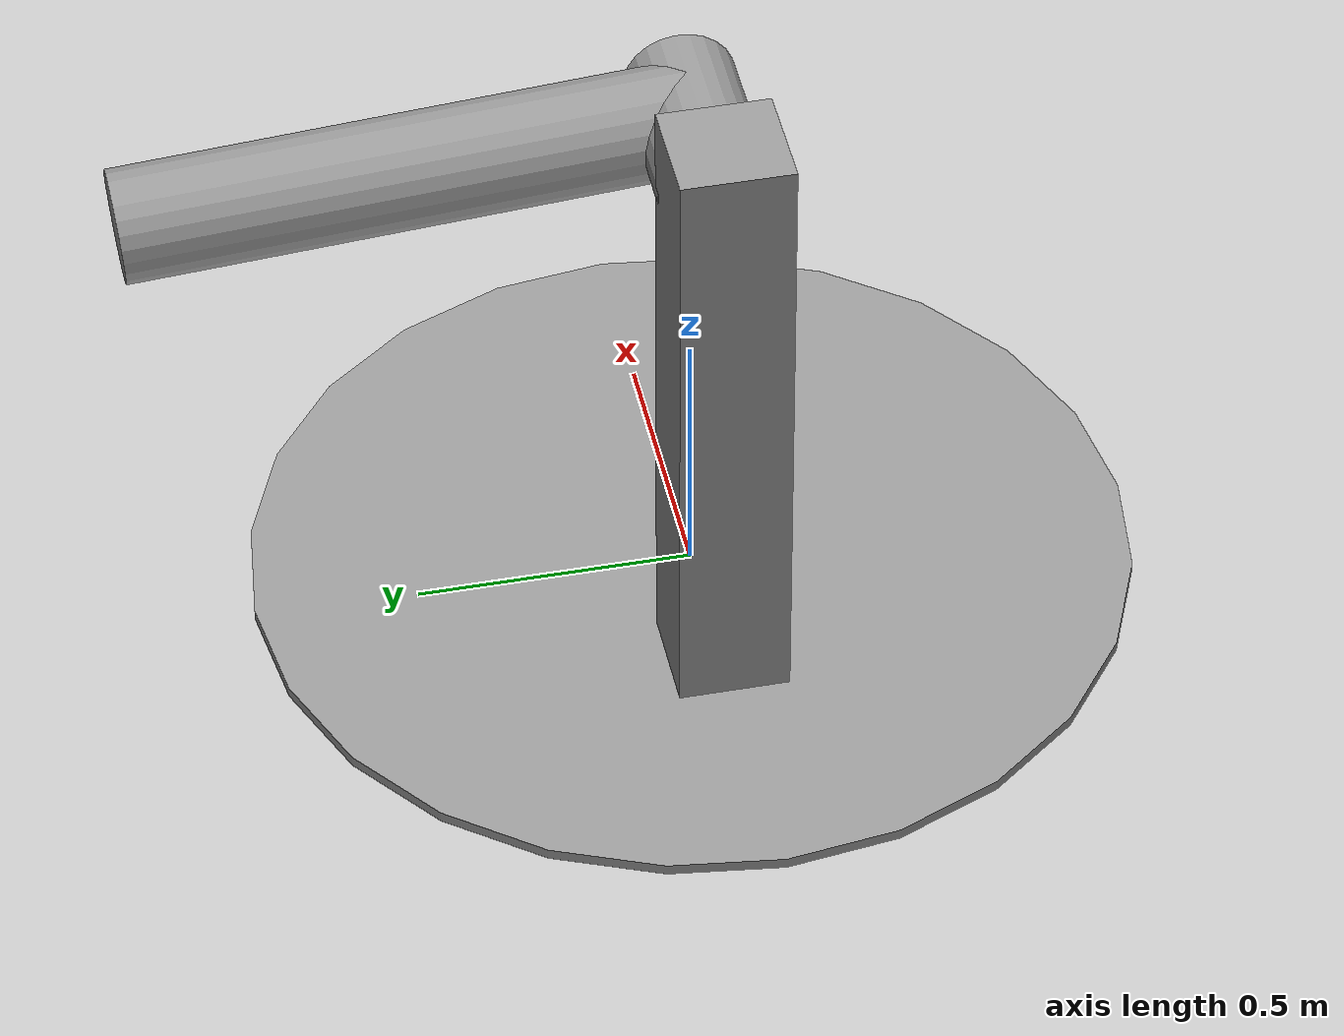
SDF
<sdf version="1.6">
  <model name="pendulum_with_base">
    <link name="base">
      <pose>0 0 0.3 0 0 0</pose>
      <inertial>
        <mass>120</mass>
        <inertia>
          <ixx>46</ixx>
          <ixy>0</ixy>
          <ixz>0</ixz>
          <iyy>46</iyy>
          <iyz>0</iyz>
          <izz>90</izz>
        </inertia>
      </inertial>
      <collision name="col_plate_on_ground">
        <pose>0 0 -0.29 0 0 0</pose>
        <geometry>
          <cylinder>
            <radius>0.8</radius>
            <length>0.02</length>
          </cylinder>
        </geometry>
      </collision>
      <visual name="vis_plate_on_ground">
        <pose>0 0 -0.29 0 0 0</pose>
        <geometry>
          <cylinder>
            <radius>0.8</radius>
            <length>0.02</length>
          </cylinder>
        </geometry>
        <material>
          <script>
            <uri>file://media/materials/scripts/gazebo.material</uri>
            <name>Gazebo/Grey</name>
          </script>
        </material>
      </visual>
      <visual name="vis_pole">
        <pose>-0.275 0 0.3 0 0 0</pose>
        <geometry>
          <box>
            <size>0.2 0.2 1.2</size>
          </box>
        </geometry>
        <material>
          <script>
            <uri>file://media/materials/scripts/gazebo.material</uri>
            <name>Gazebo/Grey</name>
          </script>
        </material>
      </visual>
    </link>
    <link name="pendulum">
      <pose>0 0.5 1.0 1.5 0 0</pose>
      <inertial>
        <mass>12</mass>
        <inertia>
          <ixx>0.85</ixx>
          <ixy>0</ixy>
          <ixz>0</ixz>
          <iyy>0.85</iyy>
          <iyz>0</iyz>
          <izz>0.04</izz>
        </inertia>
      </inertial>
      <visual name="vis_joint">
        <pose>-0.05 0 0.5 0 1.5708 0</pose>
        <geometry>
          <cylinder>
            <radius>0.1</radius>
            <length>0.3</length>
          </cylinder>
        </geometry>
        <material>
          <script>
            <uri>file://media/materials/scripts/gazebo.material</uri>
            <name>Gazebo/Grey</name>
          </script>
        </material>
      </visual>
      <visual name="vis_pendulum">
        <geometry>
          <cylinder>
            <radius>0.1</radius>
            <length>1.0</length>
          </cylinder>
        </geometry>
        <material>
          <script>
            <uri>file://media/materials/scripts/gazebo.material</uri>
            <name>Gazebo/Grey</name>
          </script>
        </material>
      </visual>
    </link>
    <joint name="joint" type="revolute">
      <parent>base</parent>
      <child>pendulum</child>
      <pose>0 0 0.5 0 0 0</pose>
      <axis>
        <xyz>1 0 0</xyz>
      </axis>
    </joint>
  </model>
</sdf>
